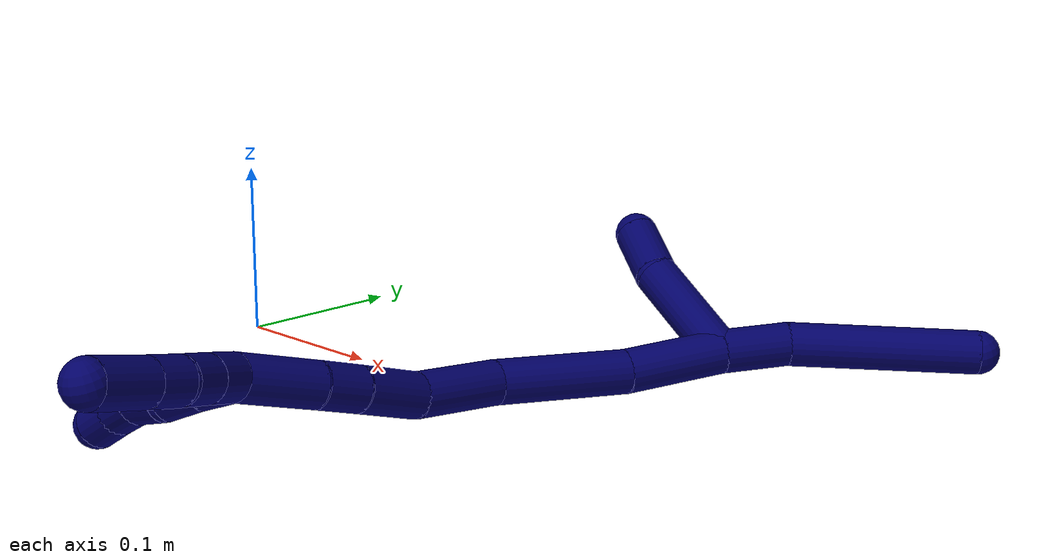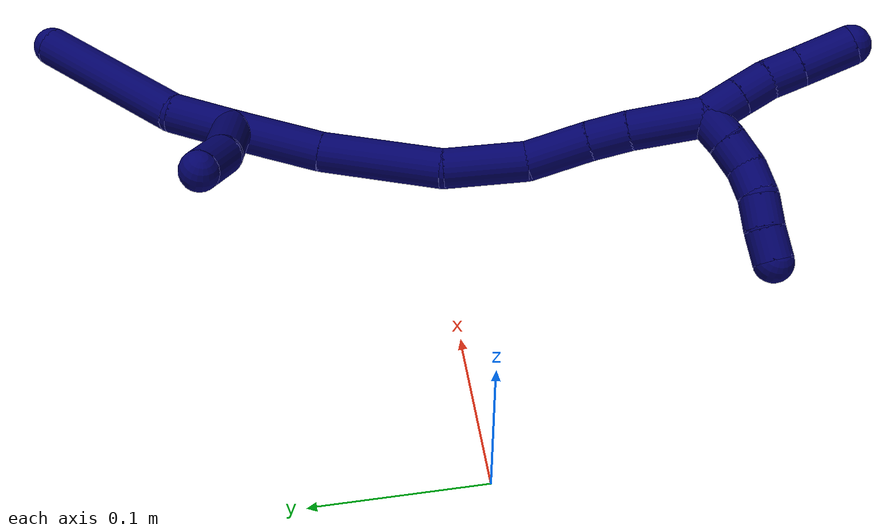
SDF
<sdf version="1.7">
 <world name="default">
  <model name="7">
   <static>0</static>
   <link name="7">
    <collision name="collision-cylinder-e_1_2_8">
     <pose>0.010897 0.016905 -0.003972 -1.80158 0.560428 -0.696852</pose>
     <geometry><cylinder><radius>0.0125</radius><length>0.041002</length></cylinder></geometry>
     <surface>
      <friction><ode><mu>1.16</mu><mu2>1.16</mu2><slip1>0</slip1><slip2>0</slip2></ode></friction>
      <contact><ode><kp>1e+06</kp><kd>1</kd><max_vel>0</max_vel><min_depth>0.001</min_depth></ode></contact>
     </surface>
    </collision>
    <visual name="visual-cylinder-e_1_2_8">
     <pose>0.010897 0.016905 -0.003972 -1.80158 0.560428 -0.696852</pose>
     <geometry><cylinder><radius>0.0125</radius><length>0.041002</length></cylinder></geometry>
     <material><ambient>0.003922 0 0.403922 1</ambient></material>
    </visual>
    <collision name="collision-cylinder-e_2_8_6">
     <pose>0.063462 0.066486 -0.020837 -1.94659 0.870337 -1.1987</pose>
     <geometry><cylinder><radius>0.0125</radius><length>0.108998</length></cylinder></geometry>
     <surface>
      <friction><ode><mu>1.16</mu><mu2>1.16</mu2><slip1>0</slip1><slip2>0</slip2></ode></friction>
      <contact><ode><kp>1e+06</kp><kd>1</kd><max_vel>0</max_vel><min_depth>0.001</min_depth></ode></contact>
     </surface>
    </collision>
    <visual name="visual-cylinder-e_2_8_6">
     <pose>0.063462 0.066486 -0.020837 -1.94659 0.870337 -1.1987</pose>
     <geometry><cylinder><radius>0.0125</radius><length>0.108998</length></cylinder></geometry>
     <material><ambient>0.003922 0 0.403922 1</ambient></material>
    </visual>
    <collision name="collision-cylinder-e_1_2_9">
     <pose>-0.025437 0.009231 0.017941 -0.47519 -0.900203 0.232963</pose>
     <geometry><cylinder><radius>0.0125</radius><length>0.064935</length></cylinder></geometry>
     <surface>
      <friction><ode><mu>1.16</mu><mu2>1.16</mu2><slip1>0</slip1><slip2>0</slip2></ode></friction>
      <contact><ode><kp>1e+06</kp><kd>1</kd><max_vel>0</max_vel><min_depth>0.001</min_depth></ode></contact>
     </surface>
    </collision>
    <visual name="visual-cylinder-e_1_2_9">
     <pose>-0.025437 0.009231 0.017941 -0.47519 -0.900203 0.232963</pose>
     <geometry><cylinder><radius>0.0125</radius><length>0.064935</length></cylinder></geometry>
     <material><ambient>0.003922 0 0.403922 1</ambient></material>
    </visual>
    <collision name="collision-cylinder-e_2_9_5">
     <pose>-0.063288 0.027872 0.043928 -0.863441 -0.786799 0.377856</pose>
     <geometry><cylinder><radius>0.0125</radius><length>0.035065</length></cylinder></geometry>
     <surface>
      <friction><ode><mu>1.16</mu><mu2>1.16</mu2><slip1>0</slip1><slip2>0</slip2></ode></friction>
      <contact><ode><kp>1e+06</kp><kd>1</kd><max_vel>0</max_vel><min_depth>0.001</min_depth></ode></contact>
     </surface>
    </collision>
    <visual name="visual-cylinder-e_2_9_5">
     <pose>-0.063288 0.027872 0.043928 -0.863441 -0.786799 0.377856</pose>
     <geometry><cylinder><radius>0.0125</radius><length>0.035065</length></cylinder></geometry>
     <material><ambient>0.003922 0 0.403922 1</ambient></material>
    </visual>
    <collision name="collision-cylinder-e_1_2_10">
     <pose>-0.013657 -0.025541 0.003913 1.41879 -0.486218 -0.419564</pose>
     <geometry><cylinder><radius>0.0125</radius><length>0.058453</length></cylinder></geometry>
     <surface>
      <friction><ode><mu>1.16</mu><mu2>1.16</mu2><slip1>0</slip1><slip2>0</slip2></ode></friction>
      <contact><ode><kp>1e+06</kp><kd>1</kd><max_vel>0</max_vel><min_depth>0.001</min_depth></ode></contact>
     </surface>
    </collision>
    <visual name="visual-cylinder-e_1_2_10">
     <pose>-0.013657 -0.025541 0.003913 1.41879 -0.486218 -0.419564</pose>
     <geometry><cylinder><radius>0.0125</radius><length>0.058453</length></cylinder></geometry>
     <material><ambient>0.003922 0 0.403922 1</ambient></material>
    </visual>
    <collision name="collision-cylinder-e_2_10_11">
     <pose>-0.044143 -0.084623 0.018006 1.27609 -0.447624 -0.334421</pose>
     <geometry><cylinder><radius>0.0125</radius><length>0.077764</length></cylinder></geometry>
     <surface>
      <friction><ode><mu>1.16</mu><mu2>1.16</mu2><slip1>0</slip1><slip2>0</slip2></ode></friction>
      <contact><ode><kp>1e+06</kp><kd>1</kd><max_vel>0</max_vel><min_depth>0.001</min_depth></ode></contact>
     </surface>
    </collision>
    <visual name="visual-cylinder-e_2_10_11">
     <pose>-0.044143 -0.084623 0.018006 1.27609 -0.447624 -0.334421</pose>
     <geometry><cylinder><radius>0.0125</radius><length>0.077764</length></cylinder></geometry>
     <material><ambient>0.003922 0 0.403922 1</ambient></material>
    </visual>
    <collision name="collision-cylinder-e_3_11_12">
     <pose>-0.06505 -0.142796 0.035344 1.28806 -0.157625 -0.118456</pose>
     <geometry><cylinder><radius>0.0125</radius><length>0.051946</length></cylinder></geometry>
     <surface>
      <friction><ode><mu>1.16</mu><mu2>1.16</mu2><slip1>0</slip1><slip2>0</slip2></ode></friction>
      <contact><ode><kp>1e+06</kp><kd>1</kd><max_vel>0</max_vel><min_depth>0.001</min_depth></ode></contact>
     </surface>
    </collision>
    <visual name="visual-cylinder-e_3_11_12">
     <pose>-0.06505 -0.142796 0.035344 1.28806 -0.157625 -0.118456</pose>
     <geometry><cylinder><radius>0.0125</radius><length>0.051946</length></cylinder></geometry>
     <material><ambient>0.003922 0 0.403922 1</ambient></material>
    </visual>
    <collision name="collision-cylinder-e_4_12_13">
     <pose>-0.070035 -0.184705 0.052247 1.05715 -0.045769 -0.026732</pose>
     <geometry><cylinder><radius>0.0125</radius><length>0.039715</length></cylinder></geometry>
     <surface>
      <friction><ode><mu>1.16</mu><mu2>1.16</mu2><slip1>0</slip1><slip2>0</slip2></ode></friction>
      <contact><ode><kp>1e+06</kp><kd>1</kd><max_vel>0</max_vel><min_depth>0.001</min_depth></ode></contact>
     </surface>
    </collision>
    <visual name="visual-cylinder-e_4_12_13">
     <pose>-0.070035 -0.184705 0.052247 1.05715 -0.045769 -0.026732</pose>
     <geometry><cylinder><radius>0.0125</radius><length>0.039715</length></cylinder></geometry>
     <material><ambient>0.003922 0 0.403922 1</ambient></material>
    </visual>
    <collision name="collision-cylinder-e_5_13_14">
     <pose>-0.072402 -0.213043 0.068112 1.06554 -0.114843 -0.067766</pose>
     <geometry><cylinder><radius>0.0125</radius><length>0.025449</length></cylinder></geometry>
     <surface>
      <friction><ode><mu>1.16</mu><mu2>1.16</mu2><slip1>0</slip1><slip2>0</slip2></ode></friction>
      <contact><ode><kp>1e+06</kp><kd>1</kd><max_vel>0</max_vel><min_depth>0.001</min_depth></ode></contact>
     </surface>
    </collision>
    <visual name="visual-cylinder-e_5_13_14">
     <pose>-0.072402 -0.213043 0.068112 1.06554 -0.114843 -0.067766</pose>
     <geometry><cylinder><radius>0.0125</radius><length>0.025449</length></cylinder></geometry>
     <material><ambient>0.003922 0 0.403922 1</ambient></material>
    </visual>
    <collision name="collision-cylinder-e_6_14_1">
     <pose>-0.078548 -0.244249 0.08504 1.07832 -0.202252 -0.12127</pose>
     <geometry><cylinder><radius>0.0125</radius><length>0.046673</length></cylinder></geometry>
     <surface>
      <friction><ode><mu>1.16</mu><mu2>1.16</mu2><slip1>0</slip1><slip2>0</slip2></ode></friction>
      <contact><ode><kp>1e+06</kp><kd>1</kd><max_vel>0</max_vel><min_depth>0.001</min_depth></ode></contact>
     </surface>
    </collision>
    <visual name="visual-cylinder-e_6_14_1">
     <pose>-0.078548 -0.244249 0.08504 1.07832 -0.202252 -0.12127</pose>
     <geometry><cylinder><radius>0.0125</radius><length>0.046673</length></cylinder></geometry>
     <material><ambient>0.003922 0 0.403922 1</ambient></material>
    </visual>
    <collision name="collision-cylinder-e_1_1_15">
     <pose>-0.092031 -0.268962 0.094518 1.85414 -1.07483 -1.34237</pose>
     <geometry><cylinder><radius>0.0125</radius><length>0.02</length></cylinder></geometry>
     <surface>
      <friction><ode><mu>1.16</mu><mu2>1.16</mu2><slip1>0</slip1><slip2>0</slip2></ode></friction>
      <contact><ode><kp>1e+06</kp><kd>1</kd><max_vel>0</max_vel><min_depth>0.001</min_depth></ode></contact>
     </surface>
    </collision>
    <visual name="visual-cylinder-e_1_1_15">
     <pose>-0.092031 -0.268962 0.094518 1.85414 -1.07483 -1.34237</pose>
     <geometry><cylinder><radius>0.0125</radius><length>0.02</length></cylinder></geometry>
     <material><ambient>0.003922 0 0.403922 1</ambient></material>
    </visual>
    <collision name="collision-cylinder-e_2_15_16">
     <pose>-0.109733 -0.27754 0.091045 2.06146 -1.09886 -1.59193</pose>
     <geometry><cylinder><radius>0.0125</radius><length>0.02</length></cylinder></geometry>
     <surface>
      <friction><ode><mu>1.16</mu><mu2>1.16</mu2><slip1>0</slip1><slip2>0</slip2></ode></friction>
      <contact><ode><kp>1e+06</kp><kd>1</kd><max_vel>0</max_vel><min_depth>0.001</min_depth></ode></contact>
     </surface>
    </collision>
    <visual name="visual-cylinder-e_2_15_16">
     <pose>-0.109733 -0.27754 0.091045 2.06146 -1.09886 -1.59193</pose>
     <geometry><cylinder><radius>0.0125</radius><length>0.02</length></cylinder></geometry>
     <material><ambient>0.003922 0 0.403922 1</ambient></material>
    </visual>
    <collision name="collision-cylinder-e_3_16_17">
     <pose>-0.128481 -0.282583 0.087459 2.52097 -1.39229 -2.40883</pose>
     <geometry><cylinder><radius>0.0125</radius><length>0.02</length></cylinder></geometry>
     <surface>
      <friction><ode><mu>1.16</mu><mu2>1.16</mu2><slip1>0</slip1><slip2>0</slip2></ode></friction>
      <contact><ode><kp>1e+06</kp><kd>1</kd><max_vel>0</max_vel><min_depth>0.001</min_depth></ode></contact>
     </surface>
    </collision>
    <visual name="visual-cylinder-e_3_16_17">
     <pose>-0.128481 -0.282583 0.087459 2.52097 -1.39229 -2.40883</pose>
     <geometry><cylinder><radius>0.0125</radius><length>0.02</length></cylinder></geometry>
     <material><ambient>0.003922 0 0.403922 1</ambient></material>
    </visual>
    <collision name="collision-cylinder-e_4_17_18">
     <pose>-0.147466 -0.283935 0.08198 3.06252 -1.15412 -3.0202</pose>
     <geometry><cylinder><radius>0.0125</radius><length>0.02</length></cylinder></geometry>
     <surface>
      <friction><ode><mu>1.16</mu><mu2>1.16</mu2><slip1>0</slip1><slip2>0</slip2></ode></friction>
      <contact><ode><kp>1e+06</kp><kd>1</kd><max_vel>0</max_vel><min_depth>0.001</min_depth></ode></contact>
     </surface>
    </collision>
    <visual name="visual-cylinder-e_4_17_18">
     <pose>-0.147466 -0.283935 0.08198 3.06252 -1.15412 -3.0202</pose>
     <geometry><cylinder><radius>0.0125</radius><length>0.02</length></cylinder></geometry>
     <material><ambient>0.003922 0 0.403922 1</ambient></material>
    </visual>
    <collision name="collision-cylinder-e_5_18_4">
     <pose>-0.165488 -0.285644 0.073558 2.83487 -1.09254 -2.64365</pose>
     <geometry><cylinder><radius>0.0125</radius><length>0.02</length></cylinder></geometry>
     <surface>
      <friction><ode><mu>1.16</mu><mu2>1.16</mu2><slip1>0</slip1><slip2>0</slip2></ode></friction>
      <contact><ode><kp>1e+06</kp><kd>1</kd><max_vel>0</max_vel><min_depth>0.001</min_depth></ode></contact>
     </surface>
    </collision>
    <visual name="visual-cylinder-e_5_18_4">
     <pose>-0.165488 -0.285644 0.073558 2.83487 -1.09254 -2.64365</pose>
     <geometry><cylinder><radius>0.0125</radius><length>0.02</length></cylinder></geometry>
     <material><ambient>0.003922 0 0.403922 1</ambient></material>
    </visual>
    <collision name="collision-cylinder-e_1_1_19">
     <pose>-0.079817 -0.274536 0.100513 1.13977 0.297158 0.191249</pose>
     <geometry><cylinder><radius>0.0125</radius><length>0.023353</length></cylinder></geometry>
     <surface>
      <friction><ode><mu>1.16</mu><mu2>1.16</mu2><slip1>0</slip1><slip2>0</slip2></ode></friction>
      <contact><ode><kp>1e+06</kp><kd>1</kd><max_vel>0</max_vel><min_depth>0.001</min_depth></ode></contact>
     </surface>
    </collision>
    <visual name="visual-cylinder-e_1_1_19">
     <pose>-0.079817 -0.274536 0.100513 1.13977 0.297158 0.191249</pose>
     <geometry><cylinder><radius>0.0125</radius><length>0.023353</length></cylinder></geometry>
     <material><ambient>0.003922 0 0.403922 1</ambient></material>
    </visual>
    <collision name="collision-cylinder-e_2_19_20">
     <pose>-0.073315 -0.293889 0.109283 1.15146 0.296704 0.193406</pose>
     <geometry><cylinder><radius>0.0125</radius><length>0.021087</length></cylinder></geometry>
     <surface>
      <friction><ode><mu>1.16</mu><mu2>1.16</mu2><slip1>0</slip1><slip2>0</slip2></ode></friction>
      <contact><ode><kp>1e+06</kp><kd>1</kd><max_vel>0</max_vel><min_depth>0.001</min_depth></ode></contact>
     </surface>
    </collision>
    <visual name="visual-cylinder-e_2_19_20">
     <pose>-0.073315 -0.293889 0.109283 1.15146 0.296704 0.193406</pose>
     <geometry><cylinder><radius>0.0125</radius><length>0.021087</length></cylinder></geometry>
     <material><ambient>0.003922 0 0.403922 1</ambient></material>
    </visual>
    <collision name="collision-cylinder-e_3_20_21">
     <pose>-0.069023 -0.312613 0.117534 1.15986 0.115997 0.076035</pose>
     <geometry><cylinder><radius>0.0125</radius><length>0.020899</length></cylinder></geometry>
     <surface>
      <friction><ode><mu>1.16</mu><mu2>1.16</mu2><slip1>0</slip1><slip2>0</slip2></ode></friction>
      <contact><ode><kp>1e+06</kp><kd>1</kd><max_vel>0</max_vel><min_depth>0.001</min_depth></ode></contact>
     </surface>
    </collision>
    <visual name="visual-cylinder-e_3_20_21">
     <pose>-0.069023 -0.312613 0.117534 1.15986 0.115997 0.076035</pose>
     <geometry><cylinder><radius>0.0125</radius><length>0.020899</length></cylinder></geometry>
     <material><ambient>0.003922 0 0.403922 1</ambient></material>
    </visual>
    <collision name="collision-cylinder-e_4_21_3">
     <pose>-0.065689 -0.337789 0.128794 1.14443 0.12289 0.079212</pose>
     <geometry><cylinder><radius>0.0125</radius><length>0.034661</length></cylinder></geometry>
     <surface>
      <friction><ode><mu>1.16</mu><mu2>1.16</mu2><slip1>0</slip1><slip2>0</slip2></ode></friction>
      <contact><ode><kp>1e+06</kp><kd>1</kd><max_vel>0</max_vel><min_depth>0.001</min_depth></ode></contact>
     </surface>
    </collision>
    <visual name="visual-cylinder-e_4_21_3">
     <pose>-0.065689 -0.337789 0.128794 1.14443 0.12289 0.079212</pose>
     <geometry><cylinder><radius>0.0125</radius><length>0.034661</length></cylinder></geometry>
     <material><ambient>0.003922 0 0.403922 1</ambient></material>
    </visual>
    <collision name="collision-sphere-3">
     <pose>-0.063565 -0.353449 0.135907 0 -0 0</pose>
     <geometry><sphere><radius>0.0125</radius></sphere></geometry>
     <surface>
      <friction><ode><mu>1.16</mu><mu2>1.16</mu2><slip1>0</slip1><slip2>0</slip2></ode></friction>
      <contact><ode><kp>1e+06</kp><kd>1</kd><max_vel>0</max_vel><min_depth>0.001</min_depth></ode></contact>
     </surface>
    </collision>
    <visual name="visual-sphere-3">
     <pose>-0.063565 -0.353449 0.135907 0 -0 0</pose>
     <geometry><sphere><radius>0.0125</radius></sphere></geometry>
     <material><ambient>0.003922 0 0.403922 1</ambient></material>
    </visual>
    <collision name="collision-sphere-21">
     <pose>-0.067814 -0.322128 0.12168 0 -0 0</pose>
     <geometry><sphere><radius>0.0125</radius></sphere></geometry>
     <surface>
      <friction><ode><mu>1.16</mu><mu2>1.16</mu2><slip1>0</slip1><slip2>0</slip2></ode></friction>
      <contact><ode><kp>1e+06</kp><kd>1</kd><max_vel>0</max_vel><min_depth>0.001</min_depth></ode></contact>
     </surface>
    </collision>
    <visual name="visual-sphere-21">
     <pose>-0.067814 -0.322128 0.12168 0 -0 0</pose>
     <geometry><sphere><radius>0.0125</radius></sphere></geometry>
     <material><ambient>0.003922 0 0.403922 1</ambient></material>
    </visual>
    <collision name="collision-sphere-20">
     <pose>-0.070232 -0.303098 0.113388 0 -0 0</pose>
     <geometry><sphere><radius>0.0125</radius></sphere></geometry>
     <surface>
      <friction><ode><mu>1.16</mu><mu2>1.16</mu2><slip1>0</slip1><slip2>0</slip2></ode></friction>
      <contact><ode><kp>1e+06</kp><kd>1</kd><max_vel>0</max_vel><min_depth>0.001</min_depth></ode></contact>
     </surface>
    </collision>
    <visual name="visual-sphere-20">
     <pose>-0.070232 -0.303098 0.113388 0 -0 0</pose>
     <geometry><sphere><radius>0.0125</radius></sphere></geometry>
     <material><ambient>0.003922 0 0.403922 1</ambient></material>
    </visual>
    <collision name="collision-sphere-19">
     <pose>-0.076398 -0.28468 0.105178 0 -0 0</pose>
     <geometry><sphere><radius>0.0125</radius></sphere></geometry>
     <surface>
      <friction><ode><mu>1.16</mu><mu2>1.16</mu2><slip1>0</slip1><slip2>0</slip2></ode></friction>
      <contact><ode><kp>1e+06</kp><kd>1</kd><max_vel>0</max_vel><min_depth>0.001</min_depth></ode></contact>
     </surface>
    </collision>
    <visual name="visual-sphere-19">
     <pose>-0.076398 -0.28468 0.105178 0 -0 0</pose>
     <geometry><sphere><radius>0.0125</radius></sphere></geometry>
     <material><ambient>0.003922 0 0.403922 1</ambient></material>
    </visual>
    <collision name="collision-sphere-10">
     <pose>-0.027314 -0.051083 0.007825 0 -0 0</pose>
     <geometry><sphere><radius>0.0125</radius></sphere></geometry>
     <surface>
      <friction><ode><mu>1.16</mu><mu2>1.16</mu2><slip1>0</slip1><slip2>0</slip2></ode></friction>
      <contact><ode><kp>1e+06</kp><kd>1</kd><max_vel>0</max_vel><min_depth>0.001</min_depth></ode></contact>
     </surface>
    </collision>
    <visual name="visual-sphere-10">
     <pose>-0.027314 -0.051083 0.007825 0 -0 0</pose>
     <geometry><sphere><radius>0.0125</radius></sphere></geometry>
     <material><ambient>0.003922 0 0.403922 1</ambient></material>
    </visual>
    <collision name="collision-sphere-5">
     <pose>-0.075703 0.037282 0.051973 0 -0 0</pose>
     <geometry><sphere><radius>0.0125</radius></sphere></geometry>
     <surface>
      <friction><ode><mu>1.16</mu><mu2>1.16</mu2><slip1>0</slip1><slip2>0</slip2></ode></friction>
      <contact><ode><kp>1e+06</kp><kd>1</kd><max_vel>0</max_vel><min_depth>0.001</min_depth></ode></contact>
     </surface>
    </collision>
    <visual name="visual-sphere-5">
     <pose>-0.075703 0.037282 0.051973 0 -0 0</pose>
     <geometry><sphere><radius>0.0125</radius></sphere></geometry>
     <material><ambient>0.003922 0 0.403922 1</ambient></material>
    </visual>
    <collision name="collision-sphere-6">
     <pose>0.105128 0.099163 -0.033729 0 -0 0</pose>
     <geometry><sphere><radius>0.0125</radius></sphere></geometry>
     <surface>
      <friction><ode><mu>1.16</mu><mu2>1.16</mu2><slip1>0</slip1><slip2>0</slip2></ode></friction>
      <contact><ode><kp>1e+06</kp><kd>1</kd><max_vel>0</max_vel><min_depth>0.001</min_depth></ode></contact>
     </surface>
    </collision>
    <visual name="visual-sphere-6">
     <pose>0.105128 0.099163 -0.033729 0 -0 0</pose>
     <geometry><sphere><radius>0.0125</radius></sphere></geometry>
     <material><ambient>0.003922 0 0.403922 1</ambient></material>
    </visual>
    <collision name="collision-sphere-9">
     <pose>-0.050874 0.018462 0.035883 0 -0 0</pose>
     <geometry><sphere><radius>0.0125</radius></sphere></geometry>
     <surface>
      <friction><ode><mu>1.16</mu><mu2>1.16</mu2><slip1>0</slip1><slip2>0</slip2></ode></friction>
      <contact><ode><kp>1e+06</kp><kd>1</kd><max_vel>0</max_vel><min_depth>0.001</min_depth></ode></contact>
     </surface>
    </collision>
    <visual name="visual-sphere-9">
     <pose>-0.050874 0.018462 0.035883 0 -0 0</pose>
     <geometry><sphere><radius>0.0125</radius></sphere></geometry>
     <material><ambient>0.003922 0 0.403922 1</ambient></material>
    </visual>
    <collision name="collision-sphere-2">
     <geometry><sphere><radius>0.0125</radius></sphere></geometry>
     <surface>
      <friction><ode><mu>1.16</mu><mu2>1.16</mu2><slip1>0</slip1><slip2>0</slip2></ode></friction>
      <contact><ode><kp>1e+06</kp><kd>1</kd><max_vel>0</max_vel><min_depth>0.001</min_depth></ode></contact>
     </surface>
    </collision>
    <visual name="visual-sphere-2">
     <geometry><sphere><radius>0.0125</radius></sphere></geometry>
     <material><ambient>0.003922 0 0.403922 1</ambient></material>
    </visual>
    <collision name="collision-sphere-8">
     <pose>0.021795 0.033809 -0.007944 0 -0 0</pose>
     <geometry><sphere><radius>0.0125</radius></sphere></geometry>
     <surface>
      <friction><ode><mu>1.16</mu><mu2>1.16</mu2><slip1>0</slip1><slip2>0</slip2></ode></friction>
      <contact><ode><kp>1e+06</kp><kd>1</kd><max_vel>0</max_vel><min_depth>0.001</min_depth></ode></contact>
     </surface>
    </collision>
    <visual name="visual-sphere-8">
     <pose>0.021795 0.033809 -0.007944 0 -0 0</pose>
     <geometry><sphere><radius>0.0125</radius></sphere></geometry>
     <material><ambient>0.003922 0 0.403922 1</ambient></material>
    </visual>
    <collision name="collision-sphere-11">
     <pose>-0.060973 -0.118163 0.028187 0 -0 0</pose>
     <geometry><sphere><radius>0.0125</radius></sphere></geometry>
     <surface>
      <friction><ode><mu>1.16</mu><mu2>1.16</mu2><slip1>0</slip1><slip2>0</slip2></ode></friction>
      <contact><ode><kp>1e+06</kp><kd>1</kd><max_vel>0</max_vel><min_depth>0.001</min_depth></ode></contact>
     </surface>
    </collision>
    <visual name="visual-sphere-11">
     <pose>-0.060973 -0.118163 0.028187 0 -0 0</pose>
     <geometry><sphere><radius>0.0125</radius></sphere></geometry>
     <material><ambient>0.003922 0 0.403922 1</ambient></material>
    </visual>
    <collision name="collision-sphere-12">
     <pose>-0.069127 -0.167428 0.0425 0 -0 0</pose>
     <geometry><sphere><radius>0.0125</radius></sphere></geometry>
     <surface>
      <friction><ode><mu>1.16</mu><mu2>1.16</mu2><slip1>0</slip1><slip2>0</slip2></ode></friction>
      <contact><ode><kp>1e+06</kp><kd>1</kd><max_vel>0</max_vel><min_depth>0.001</min_depth></ode></contact>
     </surface>
    </collision>
    <visual name="visual-sphere-12">
     <pose>-0.069127 -0.167428 0.0425 0 -0 0</pose>
     <geometry><sphere><radius>0.0125</radius></sphere></geometry>
     <material><ambient>0.003922 0 0.403922 1</ambient></material>
    </visual>
    <collision name="collision-sphere-13">
     <pose>-0.070944 -0.201982 0.061994 0 -0 0</pose>
     <geometry><sphere><radius>0.0125</radius></sphere></geometry>
     <surface>
      <friction><ode><mu>1.16</mu><mu2>1.16</mu2><slip1>0</slip1><slip2>0</slip2></ode></friction>
      <contact><ode><kp>1e+06</kp><kd>1</kd><max_vel>0</max_vel><min_depth>0.001</min_depth></ode></contact>
     </surface>
    </collision>
    <visual name="visual-sphere-13">
     <pose>-0.070944 -0.201982 0.061994 0 -0 0</pose>
     <geometry><sphere><radius>0.0125</radius></sphere></geometry>
     <material><ambient>0.003922 0 0.403922 1</ambient></material>
    </visual>
    <collision name="collision-sphere-14">
     <pose>-0.07386 -0.224105 0.074231 0 -0 0</pose>
     <geometry><sphere><radius>0.0125</radius></sphere></geometry>
     <surface>
      <friction><ode><mu>1.16</mu><mu2>1.16</mu2><slip1>0</slip1><slip2>0</slip2></ode></friction>
      <contact><ode><kp>1e+06</kp><kd>1</kd><max_vel>0</max_vel><min_depth>0.001</min_depth></ode></contact>
     </surface>
    </collision>
    <visual name="visual-sphere-14">
     <pose>-0.07386 -0.224105 0.074231 0 -0 0</pose>
     <geometry><sphere><radius>0.0125</radius></sphere></geometry>
     <material><ambient>0.003922 0 0.403922 1</ambient></material>
    </visual>
    <collision name="collision-sphere-1">
     <pose>-0.083235 -0.264393 0.095848 0 -0 0</pose>
     <geometry><sphere><radius>0.0125</radius></sphere></geometry>
     <surface>
      <friction><ode><mu>1.16</mu><mu2>1.16</mu2><slip1>0</slip1><slip2>0</slip2></ode></friction>
      <contact><ode><kp>1e+06</kp><kd>1</kd><max_vel>0</max_vel><min_depth>0.001</min_depth></ode></contact>
     </surface>
    </collision>
    <visual name="visual-sphere-1">
     <pose>-0.083235 -0.264393 0.095848 0 -0 0</pose>
     <geometry><sphere><radius>0.0125</radius></sphere></geometry>
     <material><ambient>0.003922 0 0.403922 1</ambient></material>
    </visual>
    <collision name="collision-sphere-18">
     <pose>-0.15661 -0.284255 0.077945 0 -0 0</pose>
     <geometry><sphere><radius>0.0125</radius></sphere></geometry>
     <surface>
      <friction><ode><mu>1.16</mu><mu2>1.16</mu2><slip1>0</slip1><slip2>0</slip2></ode></friction>
      <contact><ode><kp>1e+06</kp><kd>1</kd><max_vel>0</max_vel><min_depth>0.001</min_depth></ode></contact>
     </surface>
    </collision>
    <visual name="visual-sphere-18">
     <pose>-0.15661 -0.284255 0.077945 0 -0 0</pose>
     <geometry><sphere><radius>0.0125</radius></sphere></geometry>
     <material><ambient>0.003922 0 0.403922 1</ambient></material>
    </visual>
    <collision name="collision-sphere-15">
     <pose>-0.100826 -0.273531 0.093188 0 -0 0</pose>
     <geometry><sphere><radius>0.0125</radius></sphere></geometry>
     <surface>
      <friction><ode><mu>1.16</mu><mu2>1.16</mu2><slip1>0</slip1><slip2>0</slip2></ode></friction>
      <contact><ode><kp>1e+06</kp><kd>1</kd><max_vel>0</max_vel><min_depth>0.001</min_depth></ode></contact>
     </surface>
    </collision>
    <visual name="visual-sphere-15">
     <pose>-0.100826 -0.273531 0.093188 0 -0 0</pose>
     <geometry><sphere><radius>0.0125</radius></sphere></geometry>
     <material><ambient>0.003922 0 0.403922 1</ambient></material>
    </visual>
    <collision name="collision-sphere-16">
     <pose>-0.118639 -0.28155 0.088903 0 -0 0</pose>
     <geometry><sphere><radius>0.0125</radius></sphere></geometry>
     <surface>
      <friction><ode><mu>1.16</mu><mu2>1.16</mu2><slip1>0</slip1><slip2>0</slip2></ode></friction>
      <contact><ode><kp>1e+06</kp><kd>1</kd><max_vel>0</max_vel><min_depth>0.001</min_depth></ode></contact>
     </surface>
    </collision>
    <visual name="visual-sphere-16">
     <pose>-0.118639 -0.28155 0.088903 0 -0 0</pose>
     <geometry><sphere><radius>0.0125</radius></sphere></geometry>
     <material><ambient>0.003922 0 0.403922 1</ambient></material>
    </visual>
    <collision name="collision-sphere-17">
     <pose>-0.138322 -0.283615 0.086014 0 -0 0</pose>
     <geometry><sphere><radius>0.0125</radius></sphere></geometry>
     <surface>
      <friction><ode><mu>1.16</mu><mu2>1.16</mu2><slip1>0</slip1><slip2>0</slip2></ode></friction>
      <contact><ode><kp>1e+06</kp><kd>1</kd><max_vel>0</max_vel><min_depth>0.001</min_depth></ode></contact>
     </surface>
    </collision>
    <visual name="visual-sphere-17">
     <pose>-0.138322 -0.283615 0.086014 0 -0 0</pose>
     <geometry><sphere><radius>0.0125</radius></sphere></geometry>
     <material><ambient>0.003922 0 0.403922 1</ambient></material>
    </visual>
    <collision name="collision-sphere-4">
     <pose>-0.174366 -0.287034 0.06917 0 -0 0</pose>
     <geometry><sphere><radius>0.0125</radius></sphere></geometry>
     <surface>
      <friction><ode><mu>1.16</mu><mu2>1.16</mu2><slip1>0</slip1><slip2>0</slip2></ode></friction>
      <contact><ode><kp>1e+06</kp><kd>1</kd><max_vel>0</max_vel><min_depth>0.001</min_depth></ode></contact>
     </surface>
    </collision>
    <visual name="visual-sphere-4">
     <pose>-0.174366 -0.287034 0.06917 0 -0 0</pose>
     <geometry><sphere><radius>0.0125</radius></sphere></geometry>
     <material><ambient>0.003922 0 0.403922 1</ambient></material>
    </visual>
    <inertial>
     <pose>-0.043201 -0.118606 0.042209 0 -0 0</pose>
     <mass>0.75</mass>
     <inertia><ixx>4.3e-05</ixx><ixy>0</ixy><ixz>0</ixz><iyy>2.8e-05</iyy><iyz>0</iyz><izz>-9e-06</izz></inertia>
    </inertial>
   </link>
   <pose>0.274663 0.115692 0.016395 0.197293 -0.094253 0.063634</pose>
  </model>
 </world>
</sdf>
